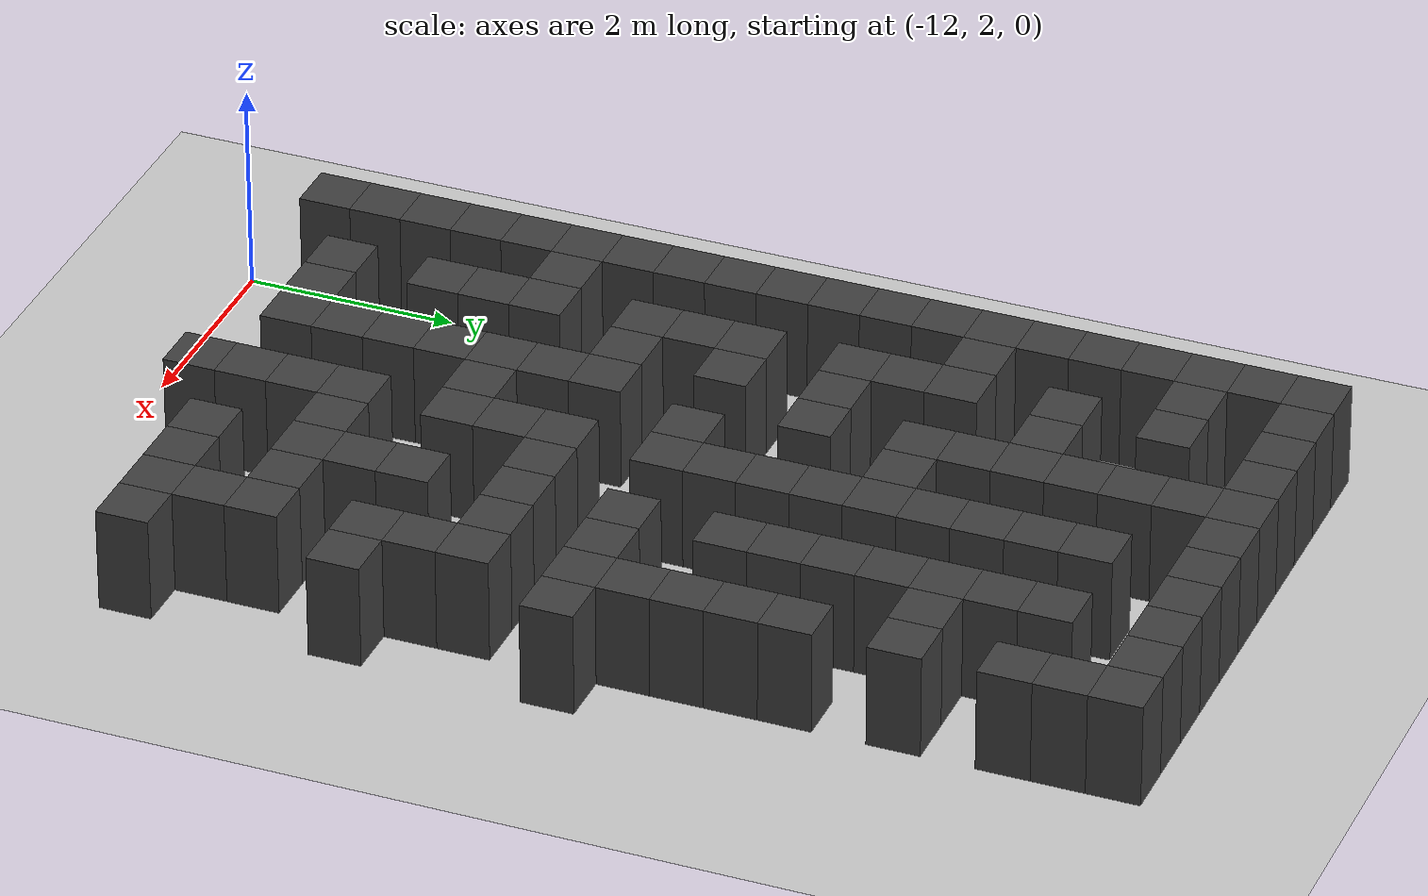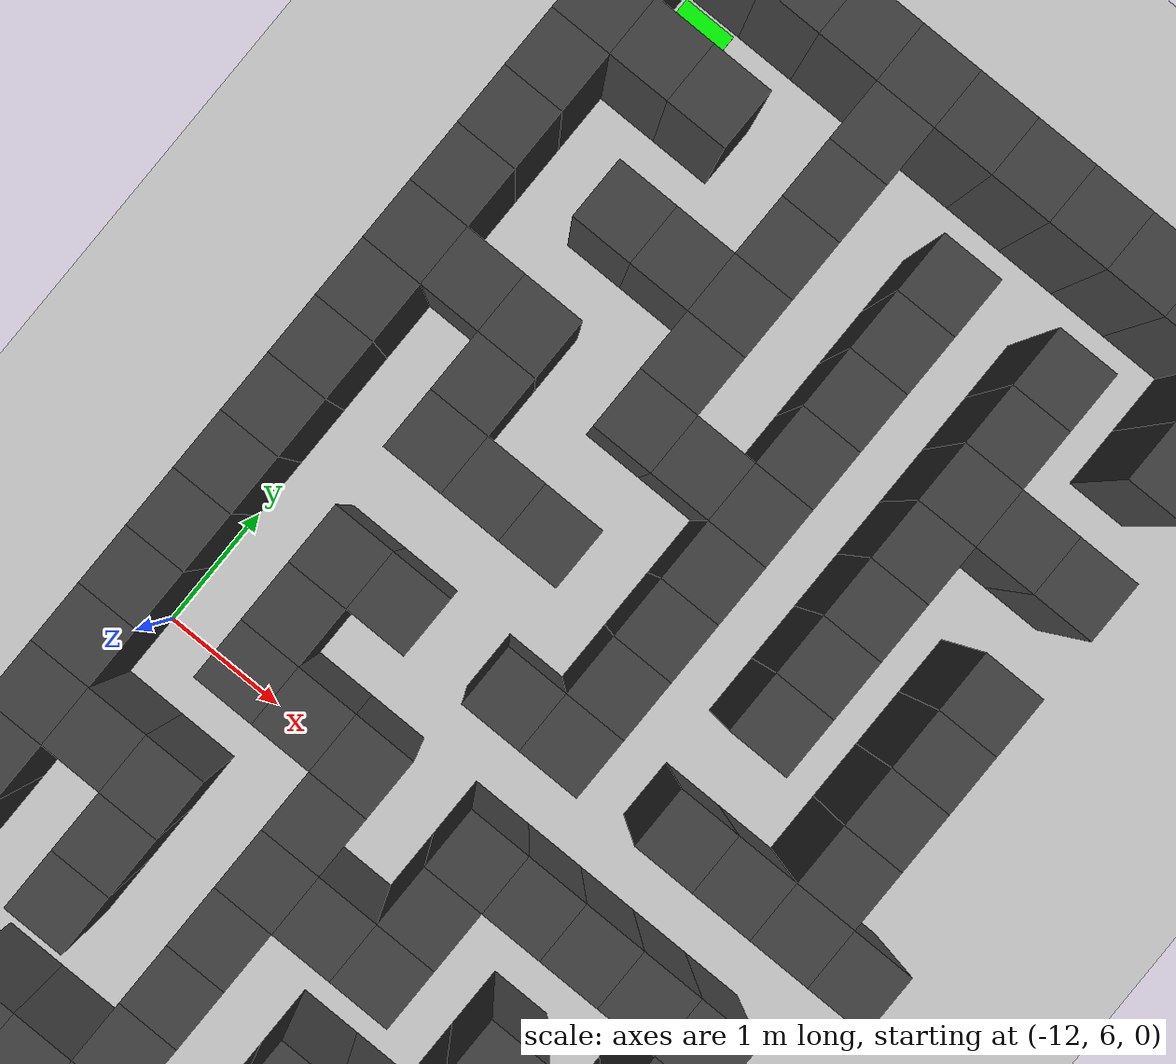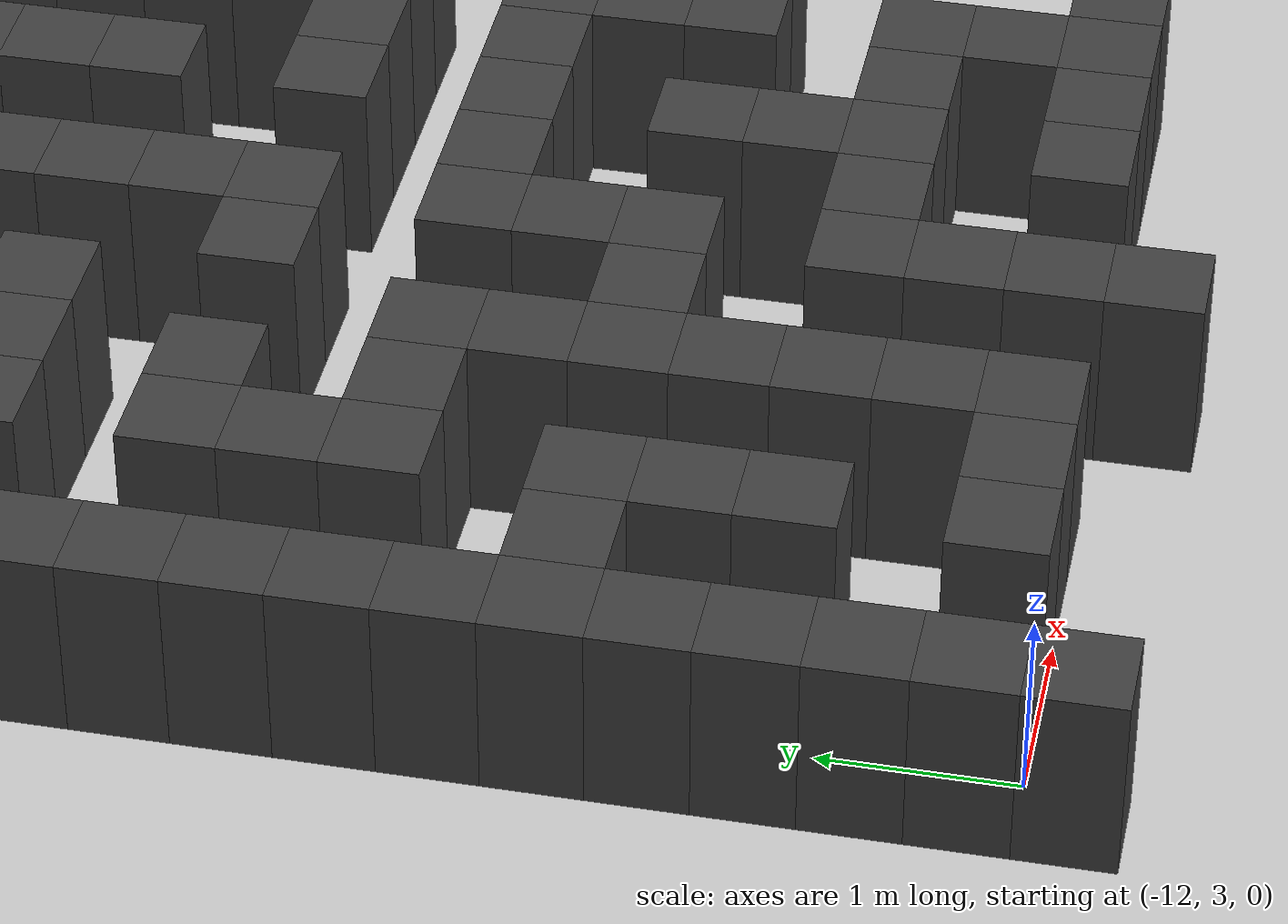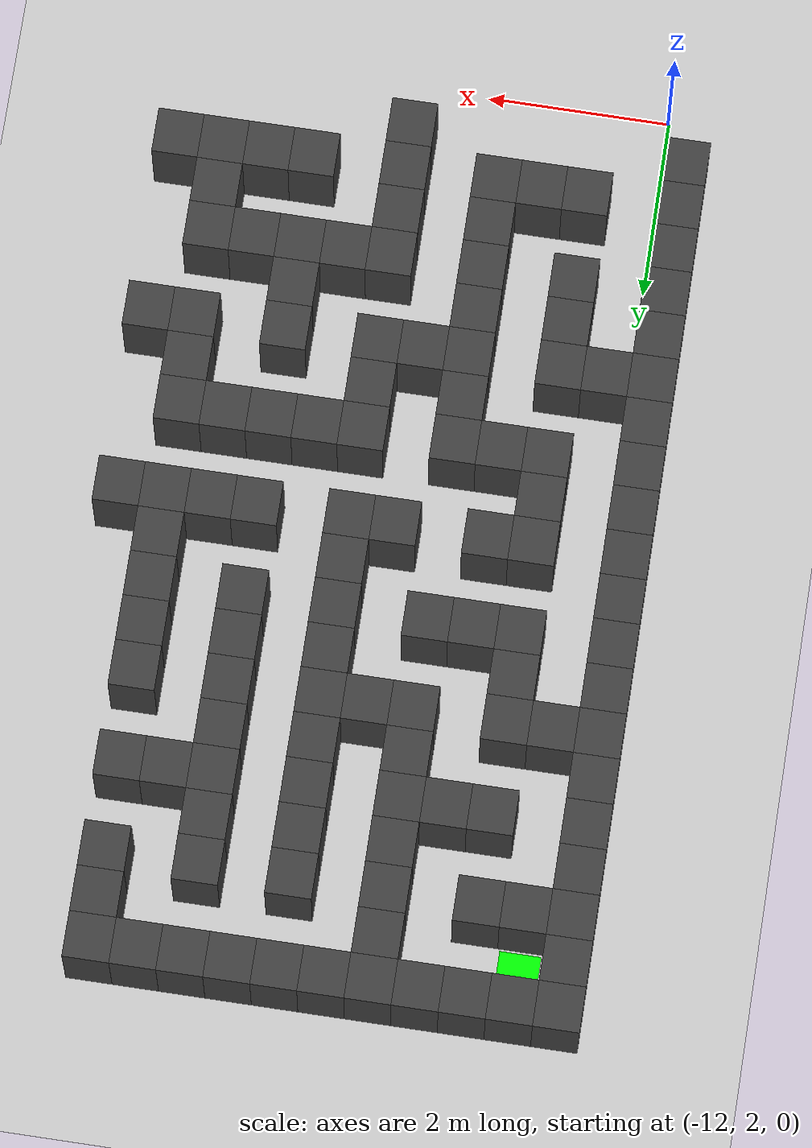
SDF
<sdf version="1.7">
 <world name="map_19217">
  <model name="ground_plane">
   <static>true</static>
   <link name="link">
    <collision name="collision">
     <geometry><plane><normal>0 0 1</normal><size>200 200</size></plane></geometry>
    </collision>
    <visual name="visual">
     <geometry><plane><normal>0 0 1</normal><size>200 200</size></plane></geometry>
     <material><ambient>0.8 0.8 0.8 1</ambient><diffuse>0.8 0.8 0.8 1</diffuse></material>
    </visual>
   </link>
  </model>
  <model name="maze_environment">
   <static>true</static>
   <link name="wall_0">
    <pose>-12.250 12.250 0.500 0 0 0</pose>
    <collision name="col"><geometry><box><size>0.5 0.5 1.0</size></box></geometry></collision>
    <visual name="vis">
     <geometry><box><size>0.5 0.5 1.0</size></box></geometry>
     <material><ambient>0.15 0.15 0.15 1</ambient><diffuse>0.25 0.25 0.25 1</diffuse></material>
    </visual>
   </link>
   <link name="wall_1">
    <pose>-11.750 12.250 0.500 0 0 0</pose>
    <collision name="col"><geometry><box><size>0.5 0.5 1.0</size></box></geometry></collision>
    <visual name="vis">
     <geometry><box><size>0.5 0.5 1.0</size></box></geometry>
     <material><ambient>0.15 0.15 0.15 1</ambient><diffuse>0.25 0.25 0.25 1</diffuse></material>
    </visual>
   </link>
   <link name="wall_2">
    <pose>-11.250 12.250 0.500 0 0 0</pose>
    <collision name="col"><geometry><box><size>0.5 0.5 1.0</size></box></geometry></collision>
    <visual name="vis">
     <geometry><box><size>0.5 0.5 1.0</size></box></geometry>
     <material><ambient>0.15 0.15 0.15 1</ambient><diffuse>0.25 0.25 0.25 1</diffuse></material>
    </visual>
   </link>
   <link name="wall_3">
    <pose>-10.750 12.250 0.500 0 0 0</pose>
    <collision name="col"><geometry><box><size>0.5 0.5 1.0</size></box></geometry></collision>
    <visual name="vis">
     <geometry><box><size>0.5 0.5 1.0</size></box></geometry>
     <material><ambient>0.15 0.15 0.15 1</ambient><diffuse>0.25 0.25 0.25 1</diffuse></material>
    </visual>
   </link>
   <link name="wall_4">
    <pose>-10.250 12.250 0.500 0 0 0</pose>
    <collision name="col"><geometry><box><size>0.5 0.5 1.0</size></box></geometry></collision>
    <visual name="vis">
     <geometry><box><size>0.5 0.5 1.0</size></box></geometry>
     <material><ambient>0.15 0.15 0.15 1</ambient><diffuse>0.25 0.25 0.25 1</diffuse></material>
    </visual>
   </link>
   <link name="wall_5">
    <pose>-9.750 12.250 0.500 0 0 0</pose>
    <collision name="col"><geometry><box><size>0.5 0.5 1.0</size></box></geometry></collision>
    <visual name="vis">
     <geometry><box><size>0.5 0.5 1.0</size></box></geometry>
     <material><ambient>0.15 0.15 0.15 1</ambient><diffuse>0.25 0.25 0.25 1</diffuse></material>
    </visual>
   </link>
   <link name="wall_6">
    <pose>-9.250 12.250 0.500 0 0 0</pose>
    <collision name="col"><geometry><box><size>0.5 0.5 1.0</size></box></geometry></collision>
    <visual name="vis">
     <geometry><box><size>0.5 0.5 1.0</size></box></geometry>
     <material><ambient>0.15 0.15 0.15 1</ambient><diffuse>0.25 0.25 0.25 1</diffuse></material>
    </visual>
   </link>
   <link name="wall_7">
    <pose>-8.750 12.250 0.500 0 0 0</pose>
    <collision name="col"><geometry><box><size>0.5 0.5 1.0</size></box></geometry></collision>
    <visual name="vis">
     <geometry><box><size>0.5 0.5 1.0</size></box></geometry>
     <material><ambient>0.15 0.15 0.15 1</ambient><diffuse>0.25 0.25 0.25 1</diffuse></material>
    </visual>
   </link>
   <link name="wall_8">
    <pose>-8.250 12.250 0.500 0 0 0</pose>
    <collision name="col"><geometry><box><size>0.5 0.5 1.0</size></box></geometry></collision>
    <visual name="vis">
     <geometry><box><size>0.5 0.5 1.0</size></box></geometry>
     <material><ambient>0.15 0.15 0.15 1</ambient><diffuse>0.25 0.25 0.25 1</diffuse></material>
    </visual>
   </link>
   <link name="wall_9">
    <pose>-7.750 12.250 0.500 0 0 0</pose>
    <collision name="col"><geometry><box><size>0.5 0.5 1.0</size></box></geometry></collision>
    <visual name="vis">
     <geometry><box><size>0.5 0.5 1.0</size></box></geometry>
     <material><ambient>0.15 0.15 0.15 1</ambient><diffuse>0.25 0.25 0.25 1</diffuse></material>
    </visual>
   </link>
   <link name="wall_10">
    <pose>-7.250 12.250 0.500 0 0 0</pose>
    <collision name="col"><geometry><box><size>0.5 0.5 1.0</size></box></geometry></collision>
    <visual name="vis">
     <geometry><box><size>0.5 0.5 1.0</size></box></geometry>
     <material><ambient>0.15 0.15 0.15 1</ambient><diffuse>0.25 0.25 0.25 1</diffuse></material>
    </visual>
   </link>
   <link name="wall_50">
    <pose>-12.250 11.750 0.500 0 0 0</pose>
    <collision name="col"><geometry><box><size>0.5 0.5 1.0</size></box></geometry></collision>
    <visual name="vis">
     <geometry><box><size>0.5 0.5 1.0</size></box></geometry>
     <material><ambient>0.15 0.15 0.15 1</ambient><diffuse>0.25 0.25 0.25 1</diffuse></material>
    </visual>
   </link>
   <link name="wall_51">
    <pose>-10.250 11.750 0.500 0 0 0</pose>
    <collision name="col"><geometry><box><size>0.5 0.5 1.0</size></box></geometry></collision>
    <visual name="vis">
     <geometry><box><size>0.5 0.5 1.0</size></box></geometry>
     <material><ambient>0.15 0.15 0.15 1</ambient><diffuse>0.25 0.25 0.25 1</diffuse></material>
    </visual>
   </link>
   <link name="wall_52">
    <pose>-7.250 11.750 0.500 0 0 0</pose>
    <collision name="col"><geometry><box><size>0.5 0.5 1.0</size></box></geometry></collision>
    <visual name="vis">
     <geometry><box><size>0.5 0.5 1.0</size></box></geometry>
     <material><ambient>0.15 0.15 0.15 1</ambient><diffuse>0.25 0.25 0.25 1</diffuse></material>
    </visual>
   </link>
   <link name="wall_59">
    <pose>-12.250 11.250 0.500 0 0 0</pose>
    <collision name="col"><geometry><box><size>0.5 0.5 1.0</size></box></geometry></collision>
    <visual name="vis">
     <geometry><box><size>0.5 0.5 1.0</size></box></geometry>
     <material><ambient>0.15 0.15 0.15 1</ambient><diffuse>0.25 0.25 0.25 1</diffuse></material>
    </visual>
   </link>
   <link name="wall_60">
    <pose>-11.750 11.250 0.500 0 0 0</pose>
    <collision name="col"><geometry><box><size>0.5 0.5 1.0</size></box></geometry></collision>
    <visual name="vis">
     <geometry><box><size>0.5 0.5 1.0</size></box></geometry>
     <material><ambient>0.15 0.15 0.15 1</ambient><diffuse>0.25 0.25 0.25 1</diffuse></material>
    </visual>
   </link>
   <link name="wall_61">
    <pose>-11.250 11.250 0.500 0 0 0</pose>
    <collision name="col"><geometry><box><size>0.5 0.5 1.0</size></box></geometry></collision>
    <visual name="vis">
     <geometry><box><size>0.5 0.5 1.0</size></box></geometry>
     <material><ambient>0.15 0.15 0.15 1</ambient><diffuse>0.25 0.25 0.25 1</diffuse></material>
    </visual>
   </link>
   <link name="wall_62">
    <pose>-10.250 11.250 0.500 0 0 0</pose>
    <collision name="col"><geometry><box><size>0.5 0.5 1.0</size></box></geometry></collision>
    <visual name="vis">
     <geometry><box><size>0.5 0.5 1.0</size></box></geometry>
     <material><ambient>0.15 0.15 0.15 1</ambient><diffuse>0.25 0.25 0.25 1</diffuse></material>
    </visual>
   </link>
   <link name="wall_63">
    <pose>-9.250 11.250 0.500 0 0 0</pose>
    <collision name="col"><geometry><box><size>0.5 0.5 1.0</size></box></geometry></collision>
    <visual name="vis">
     <geometry><box><size>0.5 0.5 1.0</size></box></geometry>
     <material><ambient>0.15 0.15 0.15 1</ambient><diffuse>0.25 0.25 0.25 1</diffuse></material>
    </visual>
   </link>
   <link name="wall_64">
    <pose>-8.250 11.250 0.500 0 0 0</pose>
    <collision name="col"><geometry><box><size>0.5 0.5 1.0</size></box></geometry></collision>
    <visual name="vis">
     <geometry><box><size>0.5 0.5 1.0</size></box></geometry>
     <material><ambient>0.15 0.15 0.15 1</ambient><diffuse>0.25 0.25 0.25 1</diffuse></material>
    </visual>
   </link>
   <link name="wall_65">
    <pose>-7.250 11.250 0.500 0 0 0</pose>
    <collision name="col"><geometry><box><size>0.5 0.5 1.0</size></box></geometry></collision>
    <visual name="vis">
     <geometry><box><size>0.5 0.5 1.0</size></box></geometry>
     <material><ambient>0.15 0.15 0.15 1</ambient><diffuse>0.25 0.25 0.25 1</diffuse></material>
    </visual>
   </link>
   <link name="wall_92">
    <pose>-12.250 10.750 0.500 0 0 0</pose>
    <collision name="col"><geometry><box><size>0.5 0.5 1.0</size></box></geometry></collision>
    <visual name="vis">
     <geometry><box><size>0.5 0.5 1.0</size></box></geometry>
     <material><ambient>0.15 0.15 0.15 1</ambient><diffuse>0.25 0.25 0.25 1</diffuse></material>
    </visual>
   </link>
   <link name="wall_93">
    <pose>-10.250 10.750 0.500 0 0 0</pose>
    <collision name="col"><geometry><box><size>0.5 0.5 1.0</size></box></geometry></collision>
    <visual name="vis">
     <geometry><box><size>0.5 0.5 1.0</size></box></geometry>
     <material><ambient>0.15 0.15 0.15 1</ambient><diffuse>0.25 0.25 0.25 1</diffuse></material>
    </visual>
   </link>
   <link name="wall_94">
    <pose>-9.250 10.750 0.500 0 0 0</pose>
    <collision name="col"><geometry><box><size>0.5 0.5 1.0</size></box></geometry></collision>
    <visual name="vis">
     <geometry><box><size>0.5 0.5 1.0</size></box></geometry>
     <material><ambient>0.15 0.15 0.15 1</ambient><diffuse>0.25 0.25 0.25 1</diffuse></material>
    </visual>
   </link>
   <link name="wall_95">
    <pose>-8.250 10.750 0.500 0 0 0</pose>
    <collision name="col"><geometry><box><size>0.5 0.5 1.0</size></box></geometry></collision>
    <visual name="vis">
     <geometry><box><size>0.5 0.5 1.0</size></box></geometry>
     <material><ambient>0.15 0.15 0.15 1</ambient><diffuse>0.25 0.25 0.25 1</diffuse></material>
    </visual>
   </link>
   <link name="wall_108">
    <pose>-12.250 10.250 0.500 0 0 0</pose>
    <collision name="col"><geometry><box><size>0.5 0.5 1.0</size></box></geometry></collision>
    <visual name="vis">
     <geometry><box><size>0.5 0.5 1.0</size></box></geometry>
     <material><ambient>0.15 0.15 0.15 1</ambient><diffuse>0.25 0.25 0.25 1</diffuse></material>
    </visual>
   </link>
   <link name="wall_109">
    <pose>-11.250 10.250 0.500 0 0 0</pose>
    <collision name="col"><geometry><box><size>0.5 0.5 1.0</size></box></geometry></collision>
    <visual name="vis">
     <geometry><box><size>0.5 0.5 1.0</size></box></geometry>
     <material><ambient>0.15 0.15 0.15 1</ambient><diffuse>0.25 0.25 0.25 1</diffuse></material>
    </visual>
   </link>
   <link name="wall_110">
    <pose>-10.750 10.250 0.500 0 0 0</pose>
    <collision name="col"><geometry><box><size>0.5 0.5 1.0</size></box></geometry></collision>
    <visual name="vis">
     <geometry><box><size>0.5 0.5 1.0</size></box></geometry>
     <material><ambient>0.15 0.15 0.15 1</ambient><diffuse>0.25 0.25 0.25 1</diffuse></material>
    </visual>
   </link>
   <link name="wall_111">
    <pose>-10.250 10.250 0.500 0 0 0</pose>
    <collision name="col"><geometry><box><size>0.5 0.5 1.0</size></box></geometry></collision>
    <visual name="vis">
     <geometry><box><size>0.5 0.5 1.0</size></box></geometry>
     <material><ambient>0.15 0.15 0.15 1</ambient><diffuse>0.25 0.25 0.25 1</diffuse></material>
    </visual>
   </link>
   <link name="wall_112">
    <pose>-9.250 10.250 0.500 0 0 0</pose>
    <collision name="col"><geometry><box><size>0.5 0.5 1.0</size></box></geometry></collision>
    <visual name="vis">
     <geometry><box><size>0.5 0.5 1.0</size></box></geometry>
     <material><ambient>0.15 0.15 0.15 1</ambient><diffuse>0.25 0.25 0.25 1</diffuse></material>
    </visual>
   </link>
   <link name="wall_113">
    <pose>-8.250 10.250 0.500 0 0 0</pose>
    <collision name="col"><geometry><box><size>0.5 0.5 1.0</size></box></geometry></collision>
    <visual name="vis">
     <geometry><box><size>0.5 0.5 1.0</size></box></geometry>
     <material><ambient>0.15 0.15 0.15 1</ambient><diffuse>0.25 0.25 0.25 1</diffuse></material>
    </visual>
   </link>
   <link name="wall_114">
    <pose>-7.750 10.250 0.500 0 0 0</pose>
    <collision name="col"><geometry><box><size>0.5 0.5 1.0</size></box></geometry></collision>
    <visual name="vis">
     <geometry><box><size>0.5 0.5 1.0</size></box></geometry>
     <material><ambient>0.15 0.15 0.15 1</ambient><diffuse>0.25 0.25 0.25 1</diffuse></material>
    </visual>
   </link>
   <link name="wall_115">
    <pose>-7.250 10.250 0.500 0 0 0</pose>
    <collision name="col"><geometry><box><size>0.5 0.5 1.0</size></box></geometry></collision>
    <visual name="vis">
     <geometry><box><size>0.5 0.5 1.0</size></box></geometry>
     <material><ambient>0.15 0.15 0.15 1</ambient><diffuse>0.25 0.25 0.25 1</diffuse></material>
    </visual>
   </link>
   <link name="wall_145">
    <pose>-12.250 9.750 0.500 0 0 0</pose>
    <collision name="col"><geometry><box><size>0.5 0.5 1.0</size></box></geometry></collision>
    <visual name="vis">
     <geometry><box><size>0.5 0.5 1.0</size></box></geometry>
     <material><ambient>0.15 0.15 0.15 1</ambient><diffuse>0.25 0.25 0.25 1</diffuse></material>
    </visual>
   </link>
   <link name="wall_146">
    <pose>-10.250 9.750 0.500 0 0 0</pose>
    <collision name="col"><geometry><box><size>0.5 0.5 1.0</size></box></geometry></collision>
    <visual name="vis">
     <geometry><box><size>0.5 0.5 1.0</size></box></geometry>
     <material><ambient>0.15 0.15 0.15 1</ambient><diffuse>0.25 0.25 0.25 1</diffuse></material>
    </visual>
   </link>
   <link name="wall_147">
    <pose>-9.250 9.750 0.500 0 0 0</pose>
    <collision name="col"><geometry><box><size>0.5 0.5 1.0</size></box></geometry></collision>
    <visual name="vis">
     <geometry><box><size>0.5 0.5 1.0</size></box></geometry>
     <material><ambient>0.15 0.15 0.15 1</ambient><diffuse>0.25 0.25 0.25 1</diffuse></material>
    </visual>
   </link>
   <link name="wall_148">
    <pose>-8.250 9.750 0.500 0 0 0</pose>
    <collision name="col"><geometry><box><size>0.5 0.5 1.0</size></box></geometry></collision>
    <visual name="vis">
     <geometry><box><size>0.5 0.5 1.0</size></box></geometry>
     <material><ambient>0.15 0.15 0.15 1</ambient><diffuse>0.25 0.25 0.25 1</diffuse></material>
    </visual>
   </link>
   <link name="wall_160">
    <pose>-12.250 9.250 0.500 0 0 0</pose>
    <collision name="col"><geometry><box><size>0.5 0.5 1.0</size></box></geometry></collision>
    <visual name="vis">
     <geometry><box><size>0.5 0.5 1.0</size></box></geometry>
     <material><ambient>0.15 0.15 0.15 1</ambient><diffuse>0.25 0.25 0.25 1</diffuse></material>
    </visual>
   </link>
   <link name="wall_161">
    <pose>-11.750 9.250 0.500 0 0 0</pose>
    <collision name="col"><geometry><box><size>0.5 0.5 1.0</size></box></geometry></collision>
    <visual name="vis">
     <geometry><box><size>0.5 0.5 1.0</size></box></geometry>
     <material><ambient>0.15 0.15 0.15 1</ambient><diffuse>0.25 0.25 0.25 1</diffuse></material>
    </visual>
   </link>
   <link name="wall_162">
    <pose>-11.250 9.250 0.500 0 0 0</pose>
    <collision name="col"><geometry><box><size>0.5 0.5 1.0</size></box></geometry></collision>
    <visual name="vis">
     <geometry><box><size>0.5 0.5 1.0</size></box></geometry>
     <material><ambient>0.15 0.15 0.15 1</ambient><diffuse>0.25 0.25 0.25 1</diffuse></material>
    </visual>
   </link>
   <link name="wall_163">
    <pose>-10.250 9.250 0.500 0 0 0</pose>
    <collision name="col"><geometry><box><size>0.5 0.5 1.0</size></box></geometry></collision>
    <visual name="vis">
     <geometry><box><size>0.5 0.5 1.0</size></box></geometry>
     <material><ambient>0.15 0.15 0.15 1</ambient><diffuse>0.25 0.25 0.25 1</diffuse></material>
    </visual>
   </link>
   <link name="wall_164">
    <pose>-9.750 9.250 0.500 0 0 0</pose>
    <collision name="col"><geometry><box><size>0.5 0.5 1.0</size></box></geometry></collision>
    <visual name="vis">
     <geometry><box><size>0.5 0.5 1.0</size></box></geometry>
     <material><ambient>0.15 0.15 0.15 1</ambient><diffuse>0.25 0.25 0.25 1</diffuse></material>
    </visual>
   </link>
   <link name="wall_165">
    <pose>-9.250 9.250 0.500 0 0 0</pose>
    <collision name="col"><geometry><box><size>0.5 0.5 1.0</size></box></geometry></collision>
    <visual name="vis">
     <geometry><box><size>0.5 0.5 1.0</size></box></geometry>
     <material><ambient>0.15 0.15 0.15 1</ambient><diffuse>0.25 0.25 0.25 1</diffuse></material>
    </visual>
   </link>
   <link name="wall_166">
    <pose>-8.250 9.250 0.500 0 0 0</pose>
    <collision name="col"><geometry><box><size>0.5 0.5 1.0</size></box></geometry></collision>
    <visual name="vis">
     <geometry><box><size>0.5 0.5 1.0</size></box></geometry>
     <material><ambient>0.15 0.15 0.15 1</ambient><diffuse>0.25 0.25 0.25 1</diffuse></material>
    </visual>
   </link>
   <link name="wall_167">
    <pose>-7.250 9.250 0.500 0 0 0</pose>
    <collision name="col"><geometry><box><size>0.5 0.5 1.0</size></box></geometry></collision>
    <visual name="vis">
     <geometry><box><size>0.5 0.5 1.0</size></box></geometry>
     <material><ambient>0.15 0.15 0.15 1</ambient><diffuse>0.25 0.25 0.25 1</diffuse></material>
    </visual>
   </link>
   <link name="wall_198">
    <pose>-12.250 8.750 0.500 0 0 0</pose>
    <collision name="col"><geometry><box><size>0.5 0.5 1.0</size></box></geometry></collision>
    <visual name="vis">
     <geometry><box><size>0.5 0.5 1.0</size></box></geometry>
     <material><ambient>0.15 0.15 0.15 1</ambient><diffuse>0.25 0.25 0.25 1</diffuse></material>
    </visual>
   </link>
   <link name="wall_199">
    <pose>-11.250 8.750 0.500 0 0 0</pose>
    <collision name="col"><geometry><box><size>0.5 0.5 1.0</size></box></geometry></collision>
    <visual name="vis">
     <geometry><box><size>0.5 0.5 1.0</size></box></geometry>
     <material><ambient>0.15 0.15 0.15 1</ambient><diffuse>0.25 0.25 0.25 1</diffuse></material>
    </visual>
   </link>
   <link name="wall_200">
    <pose>-9.250 8.750 0.500 0 0 0</pose>
    <collision name="col"><geometry><box><size>0.5 0.5 1.0</size></box></geometry></collision>
    <visual name="vis">
     <geometry><box><size>0.5 0.5 1.0</size></box></geometry>
     <material><ambient>0.15 0.15 0.15 1</ambient><diffuse>0.25 0.25 0.25 1</diffuse></material>
    </visual>
   </link>
   <link name="wall_201">
    <pose>-8.250 8.750 0.500 0 0 0</pose>
    <collision name="col"><geometry><box><size>0.5 0.5 1.0</size></box></geometry></collision>
    <visual name="vis">
     <geometry><box><size>0.5 0.5 1.0</size></box></geometry>
     <material><ambient>0.15 0.15 0.15 1</ambient><diffuse>0.25 0.25 0.25 1</diffuse></material>
    </visual>
   </link>
   <link name="wall_202">
    <pose>-7.250 8.750 0.500 0 0 0</pose>
    <collision name="col"><geometry><box><size>0.5 0.5 1.0</size></box></geometry></collision>
    <visual name="vis">
     <geometry><box><size>0.5 0.5 1.0</size></box></geometry>
     <material><ambient>0.15 0.15 0.15 1</ambient><diffuse>0.25 0.25 0.25 1</diffuse></material>
    </visual>
   </link>
   <link name="wall_213">
    <pose>-12.250 8.250 0.500 0 0 0</pose>
    <collision name="col"><geometry><box><size>0.5 0.5 1.0</size></box></geometry></collision>
    <visual name="vis">
     <geometry><box><size>0.5 0.5 1.0</size></box></geometry>
     <material><ambient>0.15 0.15 0.15 1</ambient><diffuse>0.25 0.25 0.25 1</diffuse></material>
    </visual>
   </link>
   <link name="wall_214">
    <pose>-11.250 8.250 0.500 0 0 0</pose>
    <collision name="col"><geometry><box><size>0.5 0.5 1.0</size></box></geometry></collision>
    <visual name="vis">
     <geometry><box><size>0.5 0.5 1.0</size></box></geometry>
     <material><ambient>0.15 0.15 0.15 1</ambient><diffuse>0.25 0.25 0.25 1</diffuse></material>
    </visual>
   </link>
   <link name="wall_215">
    <pose>-10.750 8.250 0.500 0 0 0</pose>
    <collision name="col"><geometry><box><size>0.5 0.5 1.0</size></box></geometry></collision>
    <visual name="vis">
     <geometry><box><size>0.5 0.5 1.0</size></box></geometry>
     <material><ambient>0.15 0.15 0.15 1</ambient><diffuse>0.25 0.25 0.25 1</diffuse></material>
    </visual>
   </link>
   <link name="wall_216">
    <pose>-10.250 8.250 0.500 0 0 0</pose>
    <collision name="col"><geometry><box><size>0.5 0.5 1.0</size></box></geometry></collision>
    <visual name="vis">
     <geometry><box><size>0.5 0.5 1.0</size></box></geometry>
     <material><ambient>0.15 0.15 0.15 1</ambient><diffuse>0.25 0.25 0.25 1</diffuse></material>
    </visual>
   </link>
   <link name="wall_217">
    <pose>-9.250 8.250 0.500 0 0 0</pose>
    <collision name="col"><geometry><box><size>0.5 0.5 1.0</size></box></geometry></collision>
    <visual name="vis">
     <geometry><box><size>0.5 0.5 1.0</size></box></geometry>
     <material><ambient>0.15 0.15 0.15 1</ambient><diffuse>0.25 0.25 0.25 1</diffuse></material>
    </visual>
   </link>
   <link name="wall_218">
    <pose>-8.250 8.250 0.500 0 0 0</pose>
    <collision name="col"><geometry><box><size>0.5 0.5 1.0</size></box></geometry></collision>
    <visual name="vis">
     <geometry><box><size>0.5 0.5 1.0</size></box></geometry>
     <material><ambient>0.15 0.15 0.15 1</ambient><diffuse>0.25 0.25 0.25 1</diffuse></material>
    </visual>
   </link>
   <link name="wall_219">
    <pose>-7.250 8.250 0.500 0 0 0</pose>
    <collision name="col"><geometry><box><size>0.5 0.5 1.0</size></box></geometry></collision>
    <visual name="vis">
     <geometry><box><size>0.5 0.5 1.0</size></box></geometry>
     <material><ambient>0.15 0.15 0.15 1</ambient><diffuse>0.25 0.25 0.25 1</diffuse></material>
    </visual>
   </link>
   <link name="wall_248">
    <pose>-12.250 7.750 0.500 0 0 0</pose>
    <collision name="col"><geometry><box><size>0.5 0.5 1.0</size></box></geometry></collision>
    <visual name="vis">
     <geometry><box><size>0.5 0.5 1.0</size></box></geometry>
     <material><ambient>0.15 0.15 0.15 1</ambient><diffuse>0.25 0.25 0.25 1</diffuse></material>
    </visual>
   </link>
   <link name="wall_249">
    <pose>-9.250 7.750 0.500 0 0 0</pose>
    <collision name="col"><geometry><box><size>0.5 0.5 1.0</size></box></geometry></collision>
    <visual name="vis">
     <geometry><box><size>0.5 0.5 1.0</size></box></geometry>
     <material><ambient>0.15 0.15 0.15 1</ambient><diffuse>0.25 0.25 0.25 1</diffuse></material>
    </visual>
   </link>
   <link name="wall_250">
    <pose>-7.250 7.750 0.500 0 0 0</pose>
    <collision name="col"><geometry><box><size>0.5 0.5 1.0</size></box></geometry></collision>
    <visual name="vis">
     <geometry><box><size>0.5 0.5 1.0</size></box></geometry>
     <material><ambient>0.15 0.15 0.15 1</ambient><diffuse>0.25 0.25 0.25 1</diffuse></material>
    </visual>
   </link>
   <link name="wall_261">
    <pose>-12.250 7.250 0.500 0 0 0</pose>
    <collision name="col"><geometry><box><size>0.5 0.5 1.0</size></box></geometry></collision>
    <visual name="vis">
     <geometry><box><size>0.5 0.5 1.0</size></box></geometry>
     <material><ambient>0.15 0.15 0.15 1</ambient><diffuse>0.25 0.25 0.25 1</diffuse></material>
    </visual>
   </link>
   <link name="wall_262">
    <pose>-11.250 7.250 0.500 0 0 0</pose>
    <collision name="col"><geometry><box><size>0.5 0.5 1.0</size></box></geometry></collision>
    <visual name="vis">
     <geometry><box><size>0.5 0.5 1.0</size></box></geometry>
     <material><ambient>0.15 0.15 0.15 1</ambient><diffuse>0.25 0.25 0.25 1</diffuse></material>
    </visual>
   </link>
   <link name="wall_263">
    <pose>-10.750 7.250 0.500 0 0 0</pose>
    <collision name="col"><geometry><box><size>0.5 0.5 1.0</size></box></geometry></collision>
    <visual name="vis">
     <geometry><box><size>0.5 0.5 1.0</size></box></geometry>
     <material><ambient>0.15 0.15 0.15 1</ambient><diffuse>0.25 0.25 0.25 1</diffuse></material>
    </visual>
   </link>
   <link name="wall_264">
    <pose>-9.750 7.250 0.500 0 0 0</pose>
    <collision name="col"><geometry><box><size>0.5 0.5 1.0</size></box></geometry></collision>
    <visual name="vis">
     <geometry><box><size>0.5 0.5 1.0</size></box></geometry>
     <material><ambient>0.15 0.15 0.15 1</ambient><diffuse>0.25 0.25 0.25 1</diffuse></material>
    </visual>
   </link>
   <link name="wall_265">
    <pose>-9.250 7.250 0.500 0 0 0</pose>
    <collision name="col"><geometry><box><size>0.5 0.5 1.0</size></box></geometry></collision>
    <visual name="vis">
     <geometry><box><size>0.5 0.5 1.0</size></box></geometry>
     <material><ambient>0.15 0.15 0.15 1</ambient><diffuse>0.25 0.25 0.25 1</diffuse></material>
    </visual>
   </link>
   <link name="wall_266">
    <pose>-8.250 7.250 0.500 0 0 0</pose>
    <collision name="col"><geometry><box><size>0.5 0.5 1.0</size></box></geometry></collision>
    <visual name="vis">
     <geometry><box><size>0.5 0.5 1.0</size></box></geometry>
     <material><ambient>0.15 0.15 0.15 1</ambient><diffuse>0.25 0.25 0.25 1</diffuse></material>
    </visual>
   </link>
   <link name="wall_267">
    <pose>-7.750 7.250 0.500 0 0 0</pose>
    <collision name="col"><geometry><box><size>0.5 0.5 1.0</size></box></geometry></collision>
    <visual name="vis">
     <geometry><box><size>0.5 0.5 1.0</size></box></geometry>
     <material><ambient>0.15 0.15 0.15 1</ambient><diffuse>0.25 0.25 0.25 1</diffuse></material>
    </visual>
   </link>
   <link name="wall_268">
    <pose>-7.250 7.250 0.500 0 0 0</pose>
    <collision name="col"><geometry><box><size>0.5 0.5 1.0</size></box></geometry></collision>
    <visual name="vis">
     <geometry><box><size>0.5 0.5 1.0</size></box></geometry>
     <material><ambient>0.15 0.15 0.15 1</ambient><diffuse>0.25 0.25 0.25 1</diffuse></material>
    </visual>
   </link>
   <link name="wall_269">
    <pose>-6.750 7.250 0.500 0 0 0</pose>
    <collision name="col"><geometry><box><size>0.5 0.5 1.0</size></box></geometry></collision>
    <visual name="vis">
     <geometry><box><size>0.5 0.5 1.0</size></box></geometry>
     <material><ambient>0.15 0.15 0.15 1</ambient><diffuse>0.25 0.25 0.25 1</diffuse></material>
    </visual>
   </link>
   <link name="wall_299">
    <pose>-12.250 6.750 0.500 0 0 0</pose>
    <collision name="col"><geometry><box><size>0.5 0.5 1.0</size></box></geometry></collision>
    <visual name="vis">
     <geometry><box><size>0.5 0.5 1.0</size></box></geometry>
     <material><ambient>0.15 0.15 0.15 1</ambient><diffuse>0.25 0.25 0.25 1</diffuse></material>
    </visual>
   </link>
   <link name="wall_300">
    <pose>-11.250 6.750 0.500 0 0 0</pose>
    <collision name="col"><geometry><box><size>0.5 0.5 1.0</size></box></geometry></collision>
    <visual name="vis">
     <geometry><box><size>0.5 0.5 1.0</size></box></geometry>
     <material><ambient>0.15 0.15 0.15 1</ambient><diffuse>0.25 0.25 0.25 1</diffuse></material>
    </visual>
   </link>
   <link name="wall_311">
    <pose>-12.250 6.250 0.500 0 0 0</pose>
    <collision name="col"><geometry><box><size>0.5 0.5 1.0</size></box></geometry></collision>
    <visual name="vis">
     <geometry><box><size>0.5 0.5 1.0</size></box></geometry>
     <material><ambient>0.15 0.15 0.15 1</ambient><diffuse>0.25 0.25 0.25 1</diffuse></material>
    </visual>
   </link>
   <link name="wall_312">
    <pose>-11.250 6.250 0.500 0 0 0</pose>
    <collision name="col"><geometry><box><size>0.5 0.5 1.0</size></box></geometry></collision>
    <visual name="vis">
     <geometry><box><size>0.5 0.5 1.0</size></box></geometry>
     <material><ambient>0.15 0.15 0.15 1</ambient><diffuse>0.25 0.25 0.25 1</diffuse></material>
    </visual>
   </link>
   <link name="wall_313">
    <pose>-10.750 6.250 0.500 0 0 0</pose>
    <collision name="col"><geometry><box><size>0.5 0.5 1.0</size></box></geometry></collision>
    <visual name="vis">
     <geometry><box><size>0.5 0.5 1.0</size></box></geometry>
     <material><ambient>0.15 0.15 0.15 1</ambient><diffuse>0.25 0.25 0.25 1</diffuse></material>
    </visual>
   </link>
   <link name="wall_314">
    <pose>-10.250 6.250 0.500 0 0 0</pose>
    <collision name="col"><geometry><box><size>0.5 0.5 1.0</size></box></geometry></collision>
    <visual name="vis">
     <geometry><box><size>0.5 0.5 1.0</size></box></geometry>
     <material><ambient>0.15 0.15 0.15 1</ambient><diffuse>0.25 0.25 0.25 1</diffuse></material>
    </visual>
   </link>
   <link name="wall_315">
    <pose>-9.250 6.250 0.500 0 0 0</pose>
    <collision name="col"><geometry><box><size>0.5 0.5 1.0</size></box></geometry></collision>
    <visual name="vis">
     <geometry><box><size>0.5 0.5 1.0</size></box></geometry>
     <material><ambient>0.15 0.15 0.15 1</ambient><diffuse>0.25 0.25 0.25 1</diffuse></material>
    </visual>
   </link>
   <link name="wall_316">
    <pose>-8.750 6.250 0.500 0 0 0</pose>
    <collision name="col"><geometry><box><size>0.5 0.5 1.0</size></box></geometry></collision>
    <visual name="vis">
     <geometry><box><size>0.5 0.5 1.0</size></box></geometry>
     <material><ambient>0.15 0.15 0.15 1</ambient><diffuse>0.25 0.25 0.25 1</diffuse></material>
    </visual>
   </link>
   <link name="wall_317">
    <pose>-8.250 6.250 0.500 0 0 0</pose>
    <collision name="col"><geometry><box><size>0.5 0.5 1.0</size></box></geometry></collision>
    <visual name="vis">
     <geometry><box><size>0.5 0.5 1.0</size></box></geometry>
     <material><ambient>0.15 0.15 0.15 1</ambient><diffuse>0.25 0.25 0.25 1</diffuse></material>
    </visual>
   </link>
   <link name="wall_318">
    <pose>-7.750 6.250 0.500 0 0 0</pose>
    <collision name="col"><geometry><box><size>0.5 0.5 1.0</size></box></geometry></collision>
    <visual name="vis">
     <geometry><box><size>0.5 0.5 1.0</size></box></geometry>
     <material><ambient>0.15 0.15 0.15 1</ambient><diffuse>0.25 0.25 0.25 1</diffuse></material>
    </visual>
   </link>
   <link name="wall_319">
    <pose>-7.250 6.250 0.500 0 0 0</pose>
    <collision name="col"><geometry><box><size>0.5 0.5 1.0</size></box></geometry></collision>
    <visual name="vis">
     <geometry><box><size>0.5 0.5 1.0</size></box></geometry>
     <material><ambient>0.15 0.15 0.15 1</ambient><diffuse>0.25 0.25 0.25 1</diffuse></material>
    </visual>
   </link>
   <link name="wall_349">
    <pose>-12.250 5.750 0.500 0 0 0</pose>
    <collision name="col"><geometry><box><size>0.5 0.5 1.0</size></box></geometry></collision>
    <visual name="vis">
     <geometry><box><size>0.5 0.5 1.0</size></box></geometry>
     <material><ambient>0.15 0.15 0.15 1</ambient><diffuse>0.25 0.25 0.25 1</diffuse></material>
    </visual>
   </link>
   <link name="wall_350">
    <pose>-10.250 5.750 0.500 0 0 0</pose>
    <collision name="col"><geometry><box><size>0.5 0.5 1.0</size></box></geometry></collision>
    <visual name="vis">
     <geometry><box><size>0.5 0.5 1.0</size></box></geometry>
     <material><ambient>0.15 0.15 0.15 1</ambient><diffuse>0.25 0.25 0.25 1</diffuse></material>
    </visual>
   </link>
   <link name="wall_351">
    <pose>-9.250 5.750 0.500 0 0 0</pose>
    <collision name="col"><geometry><box><size>0.5 0.5 1.0</size></box></geometry></collision>
    <visual name="vis">
     <geometry><box><size>0.5 0.5 1.0</size></box></geometry>
     <material><ambient>0.15 0.15 0.15 1</ambient><diffuse>0.25 0.25 0.25 1</diffuse></material>
    </visual>
   </link>
   <link name="wall_352">
    <pose>-7.250 5.750 0.500 0 0 0</pose>
    <collision name="col"><geometry><box><size>0.5 0.5 1.0</size></box></geometry></collision>
    <visual name="vis">
     <geometry><box><size>0.5 0.5 1.0</size></box></geometry>
     <material><ambient>0.15 0.15 0.15 1</ambient><diffuse>0.25 0.25 0.25 1</diffuse></material>
    </visual>
   </link>
   <link name="wall_363">
    <pose>-12.250 5.250 0.500 0 0 0</pose>
    <collision name="col"><geometry><box><size>0.5 0.5 1.0</size></box></geometry></collision>
    <visual name="vis">
     <geometry><box><size>0.5 0.5 1.0</size></box></geometry>
     <material><ambient>0.15 0.15 0.15 1</ambient><diffuse>0.25 0.25 0.25 1</diffuse></material>
    </visual>
   </link>
   <link name="wall_364">
    <pose>-11.750 5.250 0.500 0 0 0</pose>
    <collision name="col"><geometry><box><size>0.5 0.5 1.0</size></box></geometry></collision>
    <visual name="vis">
     <geometry><box><size>0.5 0.5 1.0</size></box></geometry>
     <material><ambient>0.15 0.15 0.15 1</ambient><diffuse>0.25 0.25 0.25 1</diffuse></material>
    </visual>
   </link>
   <link name="wall_365">
    <pose>-11.250 5.250 0.500 0 0 0</pose>
    <collision name="col"><geometry><box><size>0.5 0.5 1.0</size></box></geometry></collision>
    <visual name="vis">
     <geometry><box><size>0.5 0.5 1.0</size></box></geometry>
     <material><ambient>0.15 0.15 0.15 1</ambient><diffuse>0.25 0.25 0.25 1</diffuse></material>
    </visual>
   </link>
   <link name="wall_366">
    <pose>-10.250 5.250 0.500 0 0 0</pose>
    <collision name="col"><geometry><box><size>0.5 0.5 1.0</size></box></geometry></collision>
    <visual name="vis">
     <geometry><box><size>0.5 0.5 1.0</size></box></geometry>
     <material><ambient>0.15 0.15 0.15 1</ambient><diffuse>0.25 0.25 0.25 1</diffuse></material>
    </visual>
   </link>
   <link name="wall_367">
    <pose>-9.750 5.250 0.500 0 0 0</pose>
    <collision name="col"><geometry><box><size>0.5 0.5 1.0</size></box></geometry></collision>
    <visual name="vis">
     <geometry><box><size>0.5 0.5 1.0</size></box></geometry>
     <material><ambient>0.15 0.15 0.15 1</ambient><diffuse>0.25 0.25 0.25 1</diffuse></material>
    </visual>
   </link>
   <link name="wall_368">
    <pose>-9.250 5.250 0.500 0 0 0</pose>
    <collision name="col"><geometry><box><size>0.5 0.5 1.0</size></box></geometry></collision>
    <visual name="vis">
     <geometry><box><size>0.5 0.5 1.0</size></box></geometry>
     <material><ambient>0.15 0.15 0.15 1</ambient><diffuse>0.25 0.25 0.25 1</diffuse></material>
    </visual>
   </link>
   <link name="wall_369">
    <pose>-8.250 5.250 0.500 0 0 0</pose>
    <collision name="col"><geometry><box><size>0.5 0.5 1.0</size></box></geometry></collision>
    <visual name="vis">
     <geometry><box><size>0.5 0.5 1.0</size></box></geometry>
     <material><ambient>0.15 0.15 0.15 1</ambient><diffuse>0.25 0.25 0.25 1</diffuse></material>
    </visual>
   </link>
   <link name="wall_370">
    <pose>-7.250 5.250 0.500 0 0 0</pose>
    <collision name="col"><geometry><box><size>0.5 0.5 1.0</size></box></geometry></collision>
    <visual name="vis">
     <geometry><box><size>0.5 0.5 1.0</size></box></geometry>
     <material><ambient>0.15 0.15 0.15 1</ambient><diffuse>0.25 0.25 0.25 1</diffuse></material>
    </visual>
   </link>
   <link name="wall_371">
    <pose>-6.750 5.250 0.500 0 0 0</pose>
    <collision name="col"><geometry><box><size>0.5 0.5 1.0</size></box></geometry></collision>
    <visual name="vis">
     <geometry><box><size>0.5 0.5 1.0</size></box></geometry>
     <material><ambient>0.15 0.15 0.15 1</ambient><diffuse>0.25 0.25 0.25 1</diffuse></material>
    </visual>
   </link>
   <link name="wall_402">
    <pose>-12.250 4.750 0.500 0 0 0</pose>
    <collision name="col"><geometry><box><size>0.5 0.5 1.0</size></box></geometry></collision>
    <visual name="vis">
     <geometry><box><size>0.5 0.5 1.0</size></box></geometry>
     <material><ambient>0.15 0.15 0.15 1</ambient><diffuse>0.25 0.25 0.25 1</diffuse></material>
    </visual>
   </link>
   <link name="wall_403">
    <pose>-11.250 4.750 0.500 0 0 0</pose>
    <collision name="col"><geometry><box><size>0.5 0.5 1.0</size></box></geometry></collision>
    <visual name="vis">
     <geometry><box><size>0.5 0.5 1.0</size></box></geometry>
     <material><ambient>0.15 0.15 0.15 1</ambient><diffuse>0.25 0.25 0.25 1</diffuse></material>
    </visual>
   </link>
   <link name="wall_404">
    <pose>-10.250 4.750 0.500 0 0 0</pose>
    <collision name="col"><geometry><box><size>0.5 0.5 1.0</size></box></geometry></collision>
    <visual name="vis">
     <geometry><box><size>0.5 0.5 1.0</size></box></geometry>
     <material><ambient>0.15 0.15 0.15 1</ambient><diffuse>0.25 0.25 0.25 1</diffuse></material>
    </visual>
   </link>
   <link name="wall_405">
    <pose>-8.250 4.750 0.500 0 0 0</pose>
    <collision name="col"><geometry><box><size>0.5 0.5 1.0</size></box></geometry></collision>
    <visual name="vis">
     <geometry><box><size>0.5 0.5 1.0</size></box></geometry>
     <material><ambient>0.15 0.15 0.15 1</ambient><diffuse>0.25 0.25 0.25 1</diffuse></material>
    </visual>
   </link>
   <link name="wall_413">
    <pose>-12.250 4.250 0.500 0 0 0</pose>
    <collision name="col"><geometry><box><size>0.5 0.5 1.0</size></box></geometry></collision>
    <visual name="vis">
     <geometry><box><size>0.5 0.5 1.0</size></box></geometry>
     <material><ambient>0.15 0.15 0.15 1</ambient><diffuse>0.25 0.25 0.25 1</diffuse></material>
    </visual>
   </link>
   <link name="wall_414">
    <pose>-11.250 4.250 0.500 0 0 0</pose>
    <collision name="col"><geometry><box><size>0.5 0.5 1.0</size></box></geometry></collision>
    <visual name="vis">
     <geometry><box><size>0.5 0.5 1.0</size></box></geometry>
     <material><ambient>0.15 0.15 0.15 1</ambient><diffuse>0.25 0.25 0.25 1</diffuse></material>
    </visual>
   </link>
   <link name="wall_415">
    <pose>-10.250 4.250 0.500 0 0 0</pose>
    <collision name="col"><geometry><box><size>0.5 0.5 1.0</size></box></geometry></collision>
    <visual name="vis">
     <geometry><box><size>0.5 0.5 1.0</size></box></geometry>
     <material><ambient>0.15 0.15 0.15 1</ambient><diffuse>0.25 0.25 0.25 1</diffuse></material>
    </visual>
   </link>
   <link name="wall_416">
    <pose>-9.250 4.250 0.500 0 0 0</pose>
    <collision name="col"><geometry><box><size>0.5 0.5 1.0</size></box></geometry></collision>
    <visual name="vis">
     <geometry><box><size>0.5 0.5 1.0</size></box></geometry>
     <material><ambient>0.15 0.15 0.15 1</ambient><diffuse>0.25 0.25 0.25 1</diffuse></material>
    </visual>
   </link>
   <link name="wall_417">
    <pose>-8.750 4.250 0.500 0 0 0</pose>
    <collision name="col"><geometry><box><size>0.5 0.5 1.0</size></box></geometry></collision>
    <visual name="vis">
     <geometry><box><size>0.5 0.5 1.0</size></box></geometry>
     <material><ambient>0.15 0.15 0.15 1</ambient><diffuse>0.25 0.25 0.25 1</diffuse></material>
    </visual>
   </link>
   <link name="wall_418">
    <pose>-8.250 4.250 0.500 0 0 0</pose>
    <collision name="col"><geometry><box><size>0.5 0.5 1.0</size></box></geometry></collision>
    <visual name="vis">
     <geometry><box><size>0.5 0.5 1.0</size></box></geometry>
     <material><ambient>0.15 0.15 0.15 1</ambient><diffuse>0.25 0.25 0.25 1</diffuse></material>
    </visual>
   </link>
   <link name="wall_419">
    <pose>-7.750 4.250 0.500 0 0 0</pose>
    <collision name="col"><geometry><box><size>0.5 0.5 1.0</size></box></geometry></collision>
    <visual name="vis">
     <geometry><box><size>0.5 0.5 1.0</size></box></geometry>
     <material><ambient>0.15 0.15 0.15 1</ambient><diffuse>0.25 0.25 0.25 1</diffuse></material>
    </visual>
   </link>
   <link name="wall_420">
    <pose>-7.250 4.250 0.500 0 0 0</pose>
    <collision name="col"><geometry><box><size>0.5 0.5 1.0</size></box></geometry></collision>
    <visual name="vis">
     <geometry><box><size>0.5 0.5 1.0</size></box></geometry>
     <material><ambient>0.15 0.15 0.15 1</ambient><diffuse>0.25 0.25 0.25 1</diffuse></material>
    </visual>
   </link>
   <link name="wall_454">
    <pose>-12.250 3.750 0.500 0 0 0</pose>
    <collision name="col"><geometry><box><size>0.5 0.5 1.0</size></box></geometry></collision>
    <visual name="vis">
     <geometry><box><size>0.5 0.5 1.0</size></box></geometry>
     <material><ambient>0.15 0.15 0.15 1</ambient><diffuse>0.25 0.25 0.25 1</diffuse></material>
    </visual>
   </link>
   <link name="wall_455">
    <pose>-10.250 3.750 0.500 0 0 0</pose>
    <collision name="col"><geometry><box><size>0.5 0.5 1.0</size></box></geometry></collision>
    <visual name="vis">
     <geometry><box><size>0.5 0.5 1.0</size></box></geometry>
     <material><ambient>0.15 0.15 0.15 1</ambient><diffuse>0.25 0.25 0.25 1</diffuse></material>
    </visual>
   </link>
   <link name="wall_456">
    <pose>-9.250 3.750 0.500 0 0 0</pose>
    <collision name="col"><geometry><box><size>0.5 0.5 1.0</size></box></geometry></collision>
    <visual name="vis">
     <geometry><box><size>0.5 0.5 1.0</size></box></geometry>
     <material><ambient>0.15 0.15 0.15 1</ambient><diffuse>0.25 0.25 0.25 1</diffuse></material>
    </visual>
   </link>
   <link name="wall_457">
    <pose>-7.250 3.750 0.500 0 0 0</pose>
    <collision name="col"><geometry><box><size>0.5 0.5 1.0</size></box></geometry></collision>
    <visual name="vis">
     <geometry><box><size>0.5 0.5 1.0</size></box></geometry>
     <material><ambient>0.15 0.15 0.15 1</ambient><diffuse>0.25 0.25 0.25 1</diffuse></material>
    </visual>
   </link>
   <link name="wall_467">
    <pose>-12.250 3.250 0.500 0 0 0</pose>
    <collision name="col"><geometry><box><size>0.5 0.5 1.0</size></box></geometry></collision>
    <visual name="vis">
     <geometry><box><size>0.5 0.5 1.0</size></box></geometry>
     <material><ambient>0.15 0.15 0.15 1</ambient><diffuse>0.25 0.25 0.25 1</diffuse></material>
    </visual>
   </link>
   <link name="wall_468">
    <pose>-11.250 3.250 0.500 0 0 0</pose>
    <collision name="col"><geometry><box><size>0.5 0.5 1.0</size></box></geometry></collision>
    <visual name="vis">
     <geometry><box><size>0.5 0.5 1.0</size></box></geometry>
     <material><ambient>0.15 0.15 0.15 1</ambient><diffuse>0.25 0.25 0.25 1</diffuse></material>
    </visual>
   </link>
   <link name="wall_469">
    <pose>-10.750 3.250 0.500 0 0 0</pose>
    <collision name="col"><geometry><box><size>0.5 0.5 1.0</size></box></geometry></collision>
    <visual name="vis">
     <geometry><box><size>0.5 0.5 1.0</size></box></geometry>
     <material><ambient>0.15 0.15 0.15 1</ambient><diffuse>0.25 0.25 0.25 1</diffuse></material>
    </visual>
   </link>
   <link name="wall_470">
    <pose>-10.250 3.250 0.500 0 0 0</pose>
    <collision name="col"><geometry><box><size>0.5 0.5 1.0</size></box></geometry></collision>
    <visual name="vis">
     <geometry><box><size>0.5 0.5 1.0</size></box></geometry>
     <material><ambient>0.15 0.15 0.15 1</ambient><diffuse>0.25 0.25 0.25 1</diffuse></material>
    </visual>
   </link>
   <link name="wall_471">
    <pose>-9.250 3.250 0.500 0 0 0</pose>
    <collision name="col"><geometry><box><size>0.5 0.5 1.0</size></box></geometry></collision>
    <visual name="vis">
     <geometry><box><size>0.5 0.5 1.0</size></box></geometry>
     <material><ambient>0.15 0.15 0.15 1</ambient><diffuse>0.25 0.25 0.25 1</diffuse></material>
    </visual>
   </link>
   <link name="wall_472">
    <pose>-8.250 3.250 0.500 0 0 0</pose>
    <collision name="col"><geometry><box><size>0.5 0.5 1.0</size></box></geometry></collision>
    <visual name="vis">
     <geometry><box><size>0.5 0.5 1.0</size></box></geometry>
     <material><ambient>0.15 0.15 0.15 1</ambient><diffuse>0.25 0.25 0.25 1</diffuse></material>
    </visual>
   </link>
   <link name="wall_473">
    <pose>-7.750 3.250 0.500 0 0 0</pose>
    <collision name="col"><geometry><box><size>0.5 0.5 1.0</size></box></geometry></collision>
    <visual name="vis">
     <geometry><box><size>0.5 0.5 1.0</size></box></geometry>
     <material><ambient>0.15 0.15 0.15 1</ambient><diffuse>0.25 0.25 0.25 1</diffuse></material>
    </visual>
   </link>
   <link name="wall_474">
    <pose>-7.250 3.250 0.500 0 0 0</pose>
    <collision name="col"><geometry><box><size>0.5 0.5 1.0</size></box></geometry></collision>
    <visual name="vis">
     <geometry><box><size>0.5 0.5 1.0</size></box></geometry>
     <material><ambient>0.15 0.15 0.15 1</ambient><diffuse>0.25 0.25 0.25 1</diffuse></material>
    </visual>
   </link>
   <link name="wall_475">
    <pose>-6.750 3.250 0.500 0 0 0</pose>
    <collision name="col"><geometry><box><size>0.5 0.5 1.0</size></box></geometry></collision>
    <visual name="vis">
     <geometry><box><size>0.5 0.5 1.0</size></box></geometry>
     <material><ambient>0.15 0.15 0.15 1</ambient><diffuse>0.25 0.25 0.25 1</diffuse></material>
    </visual>
   </link>
   <link name="wall_500">
    <pose>-12.250 2.750 0.500 0 0 0</pose>
    <collision name="col"><geometry><box><size>0.5 0.5 1.0</size></box></geometry></collision>
    <visual name="vis">
     <geometry><box><size>0.5 0.5 1.0</size></box></geometry>
     <material><ambient>0.15 0.15 0.15 1</ambient><diffuse>0.25 0.25 0.25 1</diffuse></material>
    </visual>
   </link>
   <link name="wall_501">
    <pose>-9.250 2.750 0.500 0 0 0</pose>
    <collision name="col"><geometry><box><size>0.5 0.5 1.0</size></box></geometry></collision>
    <visual name="vis">
     <geometry><box><size>0.5 0.5 1.0</size></box></geometry>
     <material><ambient>0.15 0.15 0.15 1</ambient><diffuse>0.25 0.25 0.25 1</diffuse></material>
    </visual>
   </link>
   <link name="start_zone">
    <pose>-11.750 11.750 0.005 0 0 0</pose>
    <visual name="vis">
     <geometry><box><size>0.45 0.45 0.01</size></box></geometry>
     <material>
      <ambient>0.0 1.0 0.0 1</ambient>
      <diffuse>0.0 1.0 0.0 1</diffuse>
      <emissive>0.00 0.60 0.00 1</emissive>
     </material>
    </visual>
   </link>
  </model>
 </world>
</sdf>
